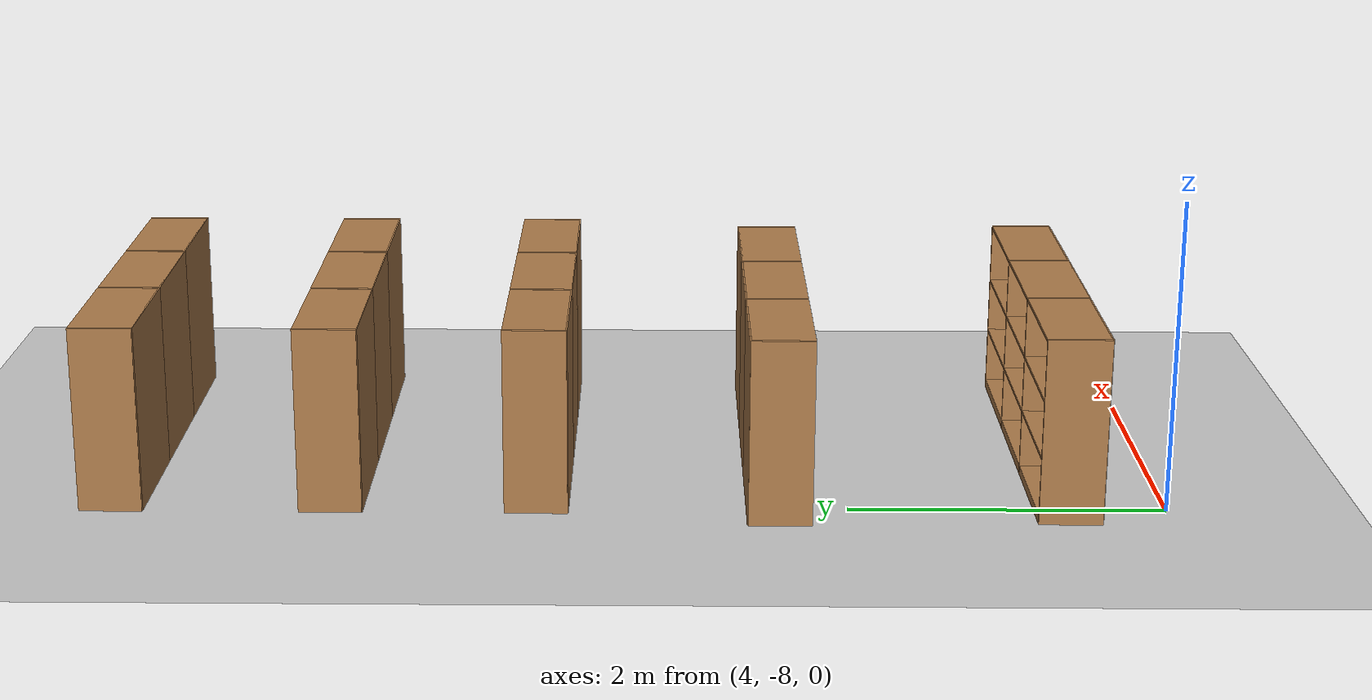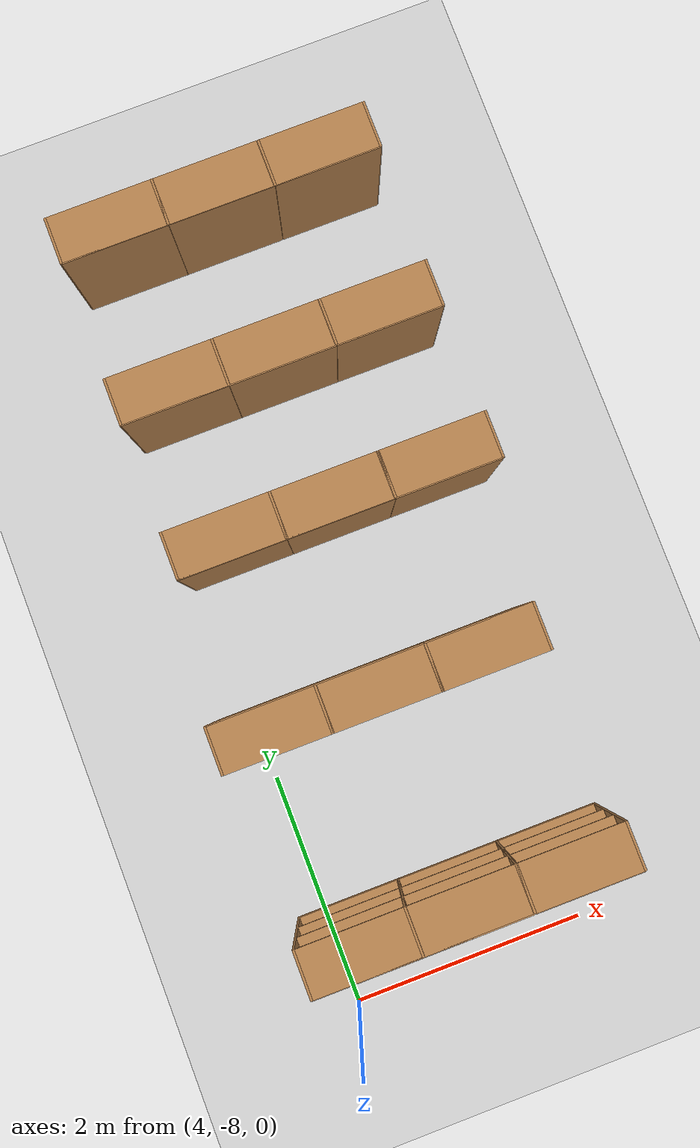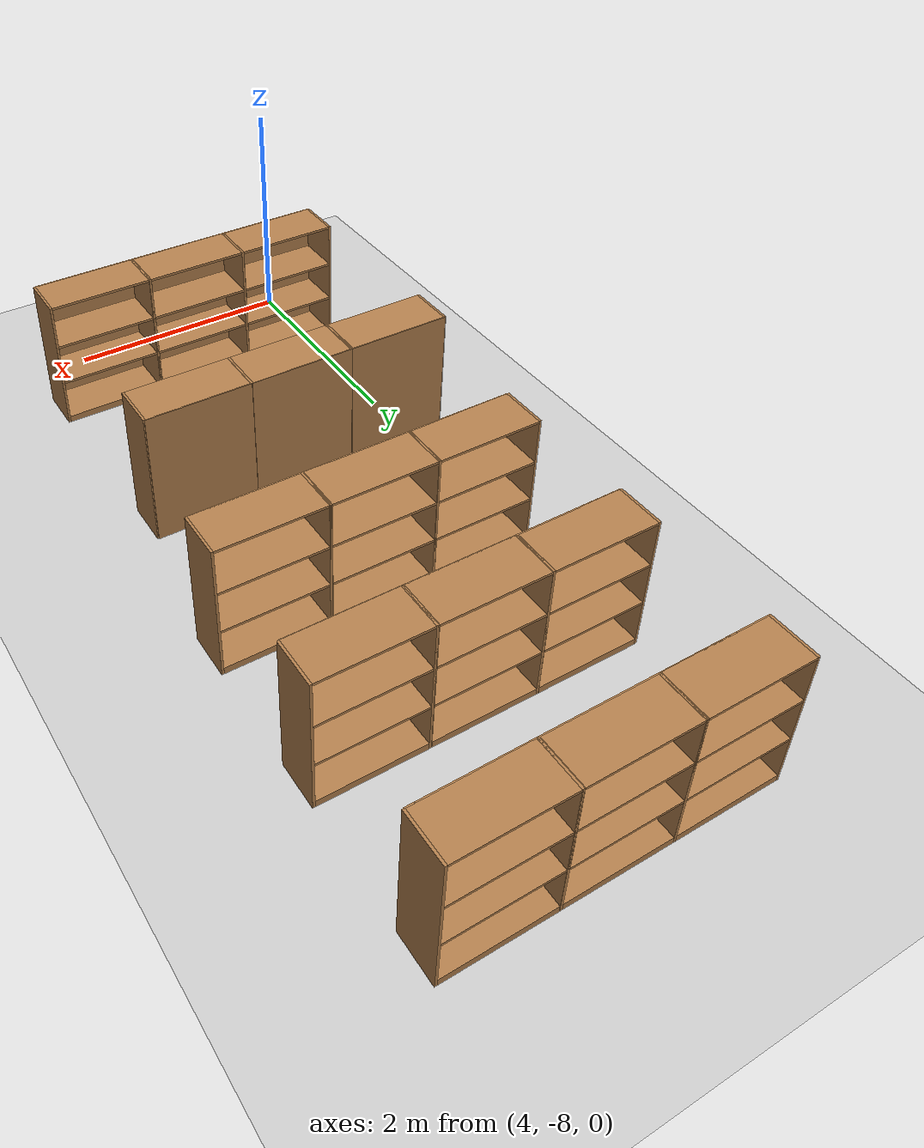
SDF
<sdf version="1.6">
 <world name="default">
  <model name="Bookself-3_0_clone_10">
   <model name="bookshelf_0">
    <static>1</static>
    <link name="link">
     <inertial><mass>1</mass></inertial>
     <collision name="back">
      <pose>0 0.005 0.6 0 -0 0</pose>
      <geometry><box><size>0.9 0.01 1.2</size></box></geometry>
     </collision>
     <visual name="visual1">
      <pose>0 0.005 0.6 0 -0 0</pose>
      <geometry><box><size>0.9 0.01 1.2</size></box></geometry>
      <material>
       <script><uri>file://media/materials/scripts/gazebo.material</uri><name>Gazebo/Wood</name></script>
      </material>
     </visual>
     <collision name="left_side">
      <pose>0.45 -0.195 0.6 0 -0 0</pose>
      <geometry><box><size>0.02 0.4 1.2</size></box></geometry>
     </collision>
     <visual name="visual2">
      <pose>0.45 -0.195 0.6 0 -0 0</pose>
      <geometry><box><size>0.02 0.4 1.2</size></box></geometry>
      <material>
       <script><uri>file://media/materials/scripts/gazebo.material</uri><name>Gazebo/Wood</name></script>
      </material>
     </visual>
     <collision name="right_side">
      <pose>-0.45 -0.195 0.6 0 -0 0</pose>
      <geometry><box><size>0.02 0.4 1.2</size></box></geometry>
     </collision>
     <visual name="visual3">
      <pose>-0.45 -0.195 0.6 0 -0 0</pose>
      <geometry><box><size>0.02 0.4 1.2</size></box></geometry>
      <material>
       <script><uri>file://media/materials/scripts/gazebo.material</uri><name>Gazebo/Wood</name></script>
      </material>
     </visual>
     <collision name="bottom">
      <pose>0 -0.195 0.03 0 -0 0</pose>
      <geometry><box><size>0.88 0.4 0.06</size></box></geometry>
     </collision>
     <visual name="visual4">
      <pose>0 -0.195 0.03 0 -0 0</pose>
      <geometry><box><size>0.88 0.4 0.06</size></box></geometry>
      <material>
       <script><uri>file://media/materials/scripts/gazebo.material</uri><name>Gazebo/Wood</name></script>
      </material>
     </visual>
     <collision name="top">
      <pose>0 -0.195 1.19 0 -0 0</pose>
      <geometry><box><size>0.88 0.4 0.02</size></box></geometry>
     </collision>
     <visual name="visual5">
      <pose>0 -0.195 1.19 0 -0 0</pose>
      <geometry><box><size>0.88 0.4 0.02</size></box></geometry>
      <material>
       <script><uri>file://media/materials/scripts/gazebo.material</uri><name>Gazebo/Wood</name></script>
      </material>
     </visual>
     <collision name="low_shelf">
      <pose>0 -0.195 0.43 0 -0 0</pose>
      <geometry><box><size>0.88 0.4 0.02</size></box></geometry>
     </collision>
     <visual name="visual6">
      <pose>0 -0.195 0.43 0 -0 0</pose>
      <geometry><box><size>0.88 0.4 0.02</size></box></geometry>
      <material>
       <script><uri>file://media/materials/scripts/gazebo.material</uri><name>Gazebo/Wood</name></script>
      </material>
     </visual>
     <collision name="high_shelf">
      <pose>0 -0.195 0.8 0 -0 0</pose>
      <geometry><box><size>0.88 0.4 0.02</size></box></geometry>
     </collision>
     <visual name="visual7">
      <pose>0 -0.195 0.8 0 -0 0</pose>
      <geometry><box><size>0.88 0.4 0.02</size></box></geometry>
      <material>
       <script><uri>file://media/materials/scripts/gazebo.material</uri><name>Gazebo/Wood</name></script>
      </material>
     </visual>
    </link>
    <pose>-0.903039 0 0 0 -0 0</pose>
   </model>
   <model name="bookshelf_1">
    <static>1</static>
    <link name="link">
     <inertial><mass>1</mass></inertial>
     <collision name="back">
      <pose>0 0.005 0.6 0 -0 0</pose>
      <geometry><box><size>0.9 0.01 1.2</size></box></geometry>
     </collision>
     <visual name="visual1">
      <pose>0 0.005 0.6 0 -0 0</pose>
      <geometry><box><size>0.9 0.01 1.2</size></box></geometry>
      <material>
       <script><uri>file://media/materials/scripts/gazebo.material</uri><name>Gazebo/Wood</name></script>
      </material>
     </visual>
     <collision name="left_side">
      <pose>0.45 -0.195 0.6 0 -0 0</pose>
      <geometry><box><size>0.02 0.4 1.2</size></box></geometry>
     </collision>
     <visual name="visual2">
      <pose>0.45 -0.195 0.6 0 -0 0</pose>
      <geometry><box><size>0.02 0.4 1.2</size></box></geometry>
      <material>
       <script><uri>file://media/materials/scripts/gazebo.material</uri><name>Gazebo/Wood</name></script>
      </material>
     </visual>
     <collision name="right_side">
      <pose>-0.45 -0.195 0.6 0 -0 0</pose>
      <geometry><box><size>0.02 0.4 1.2</size></box></geometry>
     </collision>
     <visual name="visual3">
      <pose>-0.45 -0.195 0.6 0 -0 0</pose>
      <geometry><box><size>0.02 0.4 1.2</size></box></geometry>
      <material>
       <script><uri>file://media/materials/scripts/gazebo.material</uri><name>Gazebo/Wood</name></script>
      </material>
     </visual>
     <collision name="bottom">
      <pose>0 -0.195 0.03 0 -0 0</pose>
      <geometry><box><size>0.88 0.4 0.06</size></box></geometry>
     </collision>
     <visual name="visual4">
      <pose>0 -0.195 0.03 0 -0 0</pose>
      <geometry><box><size>0.88 0.4 0.06</size></box></geometry>
      <material>
       <script><uri>file://media/materials/scripts/gazebo.material</uri><name>Gazebo/Wood</name></script>
      </material>
     </visual>
     <collision name="top">
      <pose>0 -0.195 1.19 0 -0 0</pose>
      <geometry><box><size>0.88 0.4 0.02</size></box></geometry>
     </collision>
     <visual name="visual5">
      <pose>0 -0.195 1.19 0 -0 0</pose>
      <geometry><box><size>0.88 0.4 0.02</size></box></geometry>
      <material>
       <script><uri>file://media/materials/scripts/gazebo.material</uri><name>Gazebo/Wood</name></script>
      </material>
     </visual>
     <collision name="low_shelf">
      <pose>0 -0.195 0.43 0 -0 0</pose>
      <geometry><box><size>0.88 0.4 0.02</size></box></geometry>
     </collision>
     <visual name="visual6">
      <pose>0 -0.195 0.43 0 -0 0</pose>
      <geometry><box><size>0.88 0.4 0.02</size></box></geometry>
      <material>
       <script><uri>file://media/materials/scripts/gazebo.material</uri><name>Gazebo/Wood</name></script>
      </material>
     </visual>
     <collision name="high_shelf">
      <pose>0 -0.195 0.8 0 -0 0</pose>
      <geometry><box><size>0.88 0.4 0.02</size></box></geometry>
     </collision>
     <visual name="visual7">
      <pose>0 -0.195 0.8 0 -0 0</pose>
      <geometry><box><size>0.88 0.4 0.02</size></box></geometry>
      <material>
       <script><uri>file://media/materials/scripts/gazebo.material</uri><name>Gazebo/Wood</name></script>
      </material>
     </visual>
    </link>
    <pose>0.000535 0 0 0 -0 0</pose>
   </model>
   <model name="bookshelf_1_clone">
    <static>1</static>
    <link name="link">
     <inertial><mass>1</mass></inertial>
     <collision name="back">
      <pose>0 0.005 0.6 0 -0 0</pose>
      <geometry><box><size>0.9 0.01 1.2</size></box></geometry>
     </collision>
     <visual name="visual1">
      <pose>0 0.005 0.6 0 -0 0</pose>
      <geometry><box><size>0.9 0.01 1.2</size></box></geometry>
      <material>
       <script><uri>file://media/materials/scripts/gazebo.material</uri><name>Gazebo/Wood</name></script>
      </material>
     </visual>
     <collision name="left_side">
      <pose>0.45 -0.195 0.6 0 -0 0</pose>
      <geometry><box><size>0.02 0.4 1.2</size></box></geometry>
     </collision>
     <visual name="visual2">
      <pose>0.45 -0.195 0.6 0 -0 0</pose>
      <geometry><box><size>0.02 0.4 1.2</size></box></geometry>
      <material>
       <script><uri>file://media/materials/scripts/gazebo.material</uri><name>Gazebo/Wood</name></script>
      </material>
     </visual>
     <collision name="right_side">
      <pose>-0.45 -0.195 0.6 0 -0 0</pose>
      <geometry><box><size>0.02 0.4 1.2</size></box></geometry>
     </collision>
     <visual name="visual3">
      <pose>-0.45 -0.195 0.6 0 -0 0</pose>
      <geometry><box><size>0.02 0.4 1.2</size></box></geometry>
      <material>
       <script><uri>file://media/materials/scripts/gazebo.material</uri><name>Gazebo/Wood</name></script>
      </material>
     </visual>
     <collision name="bottom">
      <pose>0 -0.195 0.03 0 -0 0</pose>
      <geometry><box><size>0.88 0.4 0.06</size></box></geometry>
     </collision>
     <visual name="visual4">
      <pose>0 -0.195 0.03 0 -0 0</pose>
      <geometry><box><size>0.88 0.4 0.06</size></box></geometry>
      <material>
       <script><uri>file://media/materials/scripts/gazebo.material</uri><name>Gazebo/Wood</name></script>
      </material>
     </visual>
     <collision name="top">
      <pose>0 -0.195 1.19 0 -0 0</pose>
      <geometry><box><size>0.88 0.4 0.02</size></box></geometry>
     </collision>
     <visual name="visual5">
      <pose>0 -0.195 1.19 0 -0 0</pose>
      <geometry><box><size>0.88 0.4 0.02</size></box></geometry>
      <material>
       <script><uri>file://media/materials/scripts/gazebo.material</uri><name>Gazebo/Wood</name></script>
      </material>
     </visual>
     <collision name="low_shelf">
      <pose>0 -0.195 0.43 0 -0 0</pose>
      <geometry><box><size>0.88 0.4 0.02</size></box></geometry>
     </collision>
     <visual name="visual6">
      <pose>0 -0.195 0.43 0 -0 0</pose>
      <geometry><box><size>0.88 0.4 0.02</size></box></geometry>
      <material>
       <script><uri>file://media/materials/scripts/gazebo.material</uri><name>Gazebo/Wood</name></script>
      </material>
     </visual>
     <collision name="high_shelf">
      <pose>0 -0.195 0.8 0 -0 0</pose>
      <geometry><box><size>0.88 0.4 0.02</size></box></geometry>
     </collision>
     <visual name="visual7">
      <pose>0 -0.195 0.8 0 -0 0</pose>
      <geometry><box><size>0.88 0.4 0.02</size></box></geometry>
      <material>
       <script><uri>file://media/materials/scripts/gazebo.material</uri><name>Gazebo/Wood</name></script>
      </material>
     </visual>
    </link>
    <pose>0.902502 0 0 0 -0 0</pose>
   </model>
   <static>1</static>
   <pose>5.26599 -1.55347 0 0 -0 3.14159</pose>
  </model>
  <model name="Bookself-3_0_clone_10_clone">
   <model name="bookshelf_0">
    <static>1</static>
    <link name="link">
     <inertial><mass>1</mass></inertial>
     <collision name="back">
      <pose>0 0.005 0.6 0 -0 0</pose>
      <geometry><box><size>0.9 0.01 1.2</size></box></geometry>
     </collision>
     <visual name="visual1">
      <pose>0 0.005 0.6 0 -0 0</pose>
      <geometry><box><size>0.9 0.01 1.2</size></box></geometry>
      <material>
       <script><uri>file://media/materials/scripts/gazebo.material</uri><name>Gazebo/Wood</name></script>
      </material>
     </visual>
     <collision name="left_side">
      <pose>0.45 -0.195 0.6 0 -0 0</pose>
      <geometry><box><size>0.02 0.4 1.2</size></box></geometry>
     </collision>
     <visual name="visual2">
      <pose>0.45 -0.195 0.6 0 -0 0</pose>
      <geometry><box><size>0.02 0.4 1.2</size></box></geometry>
      <material>
       <script><uri>file://media/materials/scripts/gazebo.material</uri><name>Gazebo/Wood</name></script>
      </material>
     </visual>
     <collision name="right_side">
      <pose>-0.45 -0.195 0.6 0 -0 0</pose>
      <geometry><box><size>0.02 0.4 1.2</size></box></geometry>
     </collision>
     <visual name="visual3">
      <pose>-0.45 -0.195 0.6 0 -0 0</pose>
      <geometry><box><size>0.02 0.4 1.2</size></box></geometry>
      <material>
       <script><uri>file://media/materials/scripts/gazebo.material</uri><name>Gazebo/Wood</name></script>
      </material>
     </visual>
     <collision name="bottom">
      <pose>0 -0.195 0.03 0 -0 0</pose>
      <geometry><box><size>0.88 0.4 0.06</size></box></geometry>
     </collision>
     <visual name="visual4">
      <pose>0 -0.195 0.03 0 -0 0</pose>
      <geometry><box><size>0.88 0.4 0.06</size></box></geometry>
      <material>
       <script><uri>file://media/materials/scripts/gazebo.material</uri><name>Gazebo/Wood</name></script>
      </material>
     </visual>
     <collision name="top">
      <pose>0 -0.195 1.19 0 -0 0</pose>
      <geometry><box><size>0.88 0.4 0.02</size></box></geometry>
     </collision>
     <visual name="visual5">
      <pose>0 -0.195 1.19 0 -0 0</pose>
      <geometry><box><size>0.88 0.4 0.02</size></box></geometry>
      <material>
       <script><uri>file://media/materials/scripts/gazebo.material</uri><name>Gazebo/Wood</name></script>
      </material>
     </visual>
     <collision name="low_shelf">
      <pose>0 -0.195 0.43 0 -0 0</pose>
      <geometry><box><size>0.88 0.4 0.02</size></box></geometry>
     </collision>
     <visual name="visual6">
      <pose>0 -0.195 0.43 0 -0 0</pose>
      <geometry><box><size>0.88 0.4 0.02</size></box></geometry>
      <material>
       <script><uri>file://media/materials/scripts/gazebo.material</uri><name>Gazebo/Wood</name></script>
      </material>
     </visual>
     <collision name="high_shelf">
      <pose>0 -0.195 0.8 0 -0 0</pose>
      <geometry><box><size>0.88 0.4 0.02</size></box></geometry>
     </collision>
     <visual name="visual7">
      <pose>0 -0.195 0.8 0 -0 0</pose>
      <geometry><box><size>0.88 0.4 0.02</size></box></geometry>
      <material>
       <script><uri>file://media/materials/scripts/gazebo.material</uri><name>Gazebo/Wood</name></script>
      </material>
     </visual>
    </link>
    <pose>-0.903039 0 0 0 -0 0</pose>
   </model>
   <model name="bookshelf_1">
    <static>1</static>
    <link name="link">
     <inertial><mass>1</mass></inertial>
     <collision name="back">
      <pose>0 0.005 0.6 0 -0 0</pose>
      <geometry><box><size>0.9 0.01 1.2</size></box></geometry>
     </collision>
     <visual name="visual1">
      <pose>0 0.005 0.6 0 -0 0</pose>
      <geometry><box><size>0.9 0.01 1.2</size></box></geometry>
      <material>
       <script><uri>file://media/materials/scripts/gazebo.material</uri><name>Gazebo/Wood</name></script>
      </material>
     </visual>
     <collision name="left_side">
      <pose>0.45 -0.195 0.6 0 -0 0</pose>
      <geometry><box><size>0.02 0.4 1.2</size></box></geometry>
     </collision>
     <visual name="visual2">
      <pose>0.45 -0.195 0.6 0 -0 0</pose>
      <geometry><box><size>0.02 0.4 1.2</size></box></geometry>
      <material>
       <script><uri>file://media/materials/scripts/gazebo.material</uri><name>Gazebo/Wood</name></script>
      </material>
     </visual>
     <collision name="right_side">
      <pose>-0.45 -0.195 0.6 0 -0 0</pose>
      <geometry><box><size>0.02 0.4 1.2</size></box></geometry>
     </collision>
     <visual name="visual3">
      <pose>-0.45 -0.195 0.6 0 -0 0</pose>
      <geometry><box><size>0.02 0.4 1.2</size></box></geometry>
      <material>
       <script><uri>file://media/materials/scripts/gazebo.material</uri><name>Gazebo/Wood</name></script>
      </material>
     </visual>
     <collision name="bottom">
      <pose>0 -0.195 0.03 0 -0 0</pose>
      <geometry><box><size>0.88 0.4 0.06</size></box></geometry>
     </collision>
     <visual name="visual4">
      <pose>0 -0.195 0.03 0 -0 0</pose>
      <geometry><box><size>0.88 0.4 0.06</size></box></geometry>
      <material>
       <script><uri>file://media/materials/scripts/gazebo.material</uri><name>Gazebo/Wood</name></script>
      </material>
     </visual>
     <collision name="top">
      <pose>0 -0.195 1.19 0 -0 0</pose>
      <geometry><box><size>0.88 0.4 0.02</size></box></geometry>
     </collision>
     <visual name="visual5">
      <pose>0 -0.195 1.19 0 -0 0</pose>
      <geometry><box><size>0.88 0.4 0.02</size></box></geometry>
      <material>
       <script><uri>file://media/materials/scripts/gazebo.material</uri><name>Gazebo/Wood</name></script>
      </material>
     </visual>
     <collision name="low_shelf">
      <pose>0 -0.195 0.43 0 -0 0</pose>
      <geometry><box><size>0.88 0.4 0.02</size></box></geometry>
     </collision>
     <visual name="visual6">
      <pose>0 -0.195 0.43 0 -0 0</pose>
      <geometry><box><size>0.88 0.4 0.02</size></box></geometry>
      <material>
       <script><uri>file://media/materials/scripts/gazebo.material</uri><name>Gazebo/Wood</name></script>
      </material>
     </visual>
     <collision name="high_shelf">
      <pose>0 -0.195 0.8 0 -0 0</pose>
      <geometry><box><size>0.88 0.4 0.02</size></box></geometry>
     </collision>
     <visual name="visual7">
      <pose>0 -0.195 0.8 0 -0 0</pose>
      <geometry><box><size>0.88 0.4 0.02</size></box></geometry>
      <material>
       <script><uri>file://media/materials/scripts/gazebo.material</uri><name>Gazebo/Wood</name></script>
      </material>
     </visual>
    </link>
    <pose>0.000535 0 0 0 -0 0</pose>
   </model>
   <model name="bookshelf_1_clone">
    <static>1</static>
    <link name="link">
     <inertial><mass>1</mass></inertial>
     <collision name="back">
      <pose>0 0.005 0.6 0 -0 0</pose>
      <geometry><box><size>0.9 0.01 1.2</size></box></geometry>
     </collision>
     <visual name="visual1">
      <pose>0 0.005 0.6 0 -0 0</pose>
      <geometry><box><size>0.9 0.01 1.2</size></box></geometry>
      <material>
       <script><uri>file://media/materials/scripts/gazebo.material</uri><name>Gazebo/Wood</name></script>
      </material>
     </visual>
     <collision name="left_side">
      <pose>0.45 -0.195 0.6 0 -0 0</pose>
      <geometry><box><size>0.02 0.4 1.2</size></box></geometry>
     </collision>
     <visual name="visual2">
      <pose>0.45 -0.195 0.6 0 -0 0</pose>
      <geometry><box><size>0.02 0.4 1.2</size></box></geometry>
      <material>
       <script><uri>file://media/materials/scripts/gazebo.material</uri><name>Gazebo/Wood</name></script>
      </material>
     </visual>
     <collision name="right_side">
      <pose>-0.45 -0.195 0.6 0 -0 0</pose>
      <geometry><box><size>0.02 0.4 1.2</size></box></geometry>
     </collision>
     <visual name="visual3">
      <pose>-0.45 -0.195 0.6 0 -0 0</pose>
      <geometry><box><size>0.02 0.4 1.2</size></box></geometry>
      <material>
       <script><uri>file://media/materials/scripts/gazebo.material</uri><name>Gazebo/Wood</name></script>
      </material>
     </visual>
     <collision name="bottom">
      <pose>0 -0.195 0.03 0 -0 0</pose>
      <geometry><box><size>0.88 0.4 0.06</size></box></geometry>
     </collision>
     <visual name="visual4">
      <pose>0 -0.195 0.03 0 -0 0</pose>
      <geometry><box><size>0.88 0.4 0.06</size></box></geometry>
      <material>
       <script><uri>file://media/materials/scripts/gazebo.material</uri><name>Gazebo/Wood</name></script>
      </material>
     </visual>
     <collision name="top">
      <pose>0 -0.195 1.19 0 -0 0</pose>
      <geometry><box><size>0.88 0.4 0.02</size></box></geometry>
     </collision>
     <visual name="visual5">
      <pose>0 -0.195 1.19 0 -0 0</pose>
      <geometry><box><size>0.88 0.4 0.02</size></box></geometry>
      <material>
       <script><uri>file://media/materials/scripts/gazebo.material</uri><name>Gazebo/Wood</name></script>
      </material>
     </visual>
     <collision name="low_shelf">
      <pose>0 -0.195 0.43 0 -0 0</pose>
      <geometry><box><size>0.88 0.4 0.02</size></box></geometry>
     </collision>
     <visual name="visual6">
      <pose>0 -0.195 0.43 0 -0 0</pose>
      <geometry><box><size>0.88 0.4 0.02</size></box></geometry>
      <material>
       <script><uri>file://media/materials/scripts/gazebo.material</uri><name>Gazebo/Wood</name></script>
      </material>
     </visual>
     <collision name="high_shelf">
      <pose>0 -0.195 0.8 0 -0 0</pose>
      <geometry><box><size>0.88 0.4 0.02</size></box></geometry>
     </collision>
     <visual name="visual7">
      <pose>0 -0.195 0.8 0 -0 0</pose>
      <geometry><box><size>0.88 0.4 0.02</size></box></geometry>
      <material>
       <script><uri>file://media/materials/scripts/gazebo.material</uri><name>Gazebo/Wood</name></script>
      </material>
     </visual>
    </link>
    <pose>0.902502 0 0 0 -0 0</pose>
   </model>
   <static>1</static>
   <pose>5.26599 -4.23241 0 0 -0 3.14159</pose>
  </model>
  <model name="Bookself-3_0_clone_10_clone_0">
   <model name="bookshelf_0">
    <static>1</static>
    <link name="link">
     <inertial><mass>1</mass></inertial>
     <collision name="back">
      <pose>0 0.005 0.6 0 -0 0</pose>
      <geometry><box><size>0.9 0.01 1.2</size></box></geometry>
     </collision>
     <visual name="visual1">
      <pose>0 0.005 0.6 0 -0 0</pose>
      <geometry><box><size>0.9 0.01 1.2</size></box></geometry>
      <material>
       <script><uri>file://media/materials/scripts/gazebo.material</uri><name>Gazebo/Wood</name></script>
      </material>
     </visual>
     <collision name="left_side">
      <pose>0.45 -0.195 0.6 0 -0 0</pose>
      <geometry><box><size>0.02 0.4 1.2</size></box></geometry>
     </collision>
     <visual name="visual2">
      <pose>0.45 -0.195 0.6 0 -0 0</pose>
      <geometry><box><size>0.02 0.4 1.2</size></box></geometry>
      <material>
       <script><uri>file://media/materials/scripts/gazebo.material</uri><name>Gazebo/Wood</name></script>
      </material>
     </visual>
     <collision name="right_side">
      <pose>-0.45 -0.195 0.6 0 -0 0</pose>
      <geometry><box><size>0.02 0.4 1.2</size></box></geometry>
     </collision>
     <visual name="visual3">
      <pose>-0.45 -0.195 0.6 0 -0 0</pose>
      <geometry><box><size>0.02 0.4 1.2</size></box></geometry>
      <material>
       <script><uri>file://media/materials/scripts/gazebo.material</uri><name>Gazebo/Wood</name></script>
      </material>
     </visual>
     <collision name="bottom">
      <pose>0 -0.195 0.03 0 -0 0</pose>
      <geometry><box><size>0.88 0.4 0.06</size></box></geometry>
     </collision>
     <visual name="visual4">
      <pose>0 -0.195 0.03 0 -0 0</pose>
      <geometry><box><size>0.88 0.4 0.06</size></box></geometry>
      <material>
       <script><uri>file://media/materials/scripts/gazebo.material</uri><name>Gazebo/Wood</name></script>
      </material>
     </visual>
     <collision name="top">
      <pose>0 -0.195 1.19 0 -0 0</pose>
      <geometry><box><size>0.88 0.4 0.02</size></box></geometry>
     </collision>
     <visual name="visual5">
      <pose>0 -0.195 1.19 0 -0 0</pose>
      <geometry><box><size>0.88 0.4 0.02</size></box></geometry>
      <material>
       <script><uri>file://media/materials/scripts/gazebo.material</uri><name>Gazebo/Wood</name></script>
      </material>
     </visual>
     <collision name="low_shelf">
      <pose>0 -0.195 0.43 0 -0 0</pose>
      <geometry><box><size>0.88 0.4 0.02</size></box></geometry>
     </collision>
     <visual name="visual6">
      <pose>0 -0.195 0.43 0 -0 0</pose>
      <geometry><box><size>0.88 0.4 0.02</size></box></geometry>
      <material>
       <script><uri>file://media/materials/scripts/gazebo.material</uri><name>Gazebo/Wood</name></script>
      </material>
     </visual>
     <collision name="high_shelf">
      <pose>0 -0.195 0.8 0 -0 0</pose>
      <geometry><box><size>0.88 0.4 0.02</size></box></geometry>
     </collision>
     <visual name="visual7">
      <pose>0 -0.195 0.8 0 -0 0</pose>
      <geometry><box><size>0.88 0.4 0.02</size></box></geometry>
      <material>
       <script><uri>file://media/materials/scripts/gazebo.material</uri><name>Gazebo/Wood</name></script>
      </material>
     </visual>
    </link>
    <pose>-0.903039 0 0 0 -0 0</pose>
   </model>
   <model name="bookshelf_1">
    <static>1</static>
    <link name="link">
     <inertial><mass>1</mass></inertial>
     <collision name="back">
      <pose>0 0.005 0.6 0 -0 0</pose>
      <geometry><box><size>0.9 0.01 1.2</size></box></geometry>
     </collision>
     <visual name="visual1">
      <pose>0 0.005 0.6 0 -0 0</pose>
      <geometry><box><size>0.9 0.01 1.2</size></box></geometry>
      <material>
       <script><uri>file://media/materials/scripts/gazebo.material</uri><name>Gazebo/Wood</name></script>
      </material>
     </visual>
     <collision name="left_side">
      <pose>0.45 -0.195 0.6 0 -0 0</pose>
      <geometry><box><size>0.02 0.4 1.2</size></box></geometry>
     </collision>
     <visual name="visual2">
      <pose>0.45 -0.195 0.6 0 -0 0</pose>
      <geometry><box><size>0.02 0.4 1.2</size></box></geometry>
      <material>
       <script><uri>file://media/materials/scripts/gazebo.material</uri><name>Gazebo/Wood</name></script>
      </material>
     </visual>
     <collision name="right_side">
      <pose>-0.45 -0.195 0.6 0 -0 0</pose>
      <geometry><box><size>0.02 0.4 1.2</size></box></geometry>
     </collision>
     <visual name="visual3">
      <pose>-0.45 -0.195 0.6 0 -0 0</pose>
      <geometry><box><size>0.02 0.4 1.2</size></box></geometry>
      <material>
       <script><uri>file://media/materials/scripts/gazebo.material</uri><name>Gazebo/Wood</name></script>
      </material>
     </visual>
     <collision name="bottom">
      <pose>0 -0.195 0.03 0 -0 0</pose>
      <geometry><box><size>0.88 0.4 0.06</size></box></geometry>
     </collision>
     <visual name="visual4">
      <pose>0 -0.195 0.03 0 -0 0</pose>
      <geometry><box><size>0.88 0.4 0.06</size></box></geometry>
      <material>
       <script><uri>file://media/materials/scripts/gazebo.material</uri><name>Gazebo/Wood</name></script>
      </material>
     </visual>
     <collision name="top">
      <pose>0 -0.195 1.19 0 -0 0</pose>
      <geometry><box><size>0.88 0.4 0.02</size></box></geometry>
     </collision>
     <visual name="visual5">
      <pose>0 -0.195 1.19 0 -0 0</pose>
      <geometry><box><size>0.88 0.4 0.02</size></box></geometry>
      <material>
       <script><uri>file://media/materials/scripts/gazebo.material</uri><name>Gazebo/Wood</name></script>
      </material>
     </visual>
     <collision name="low_shelf">
      <pose>0 -0.195 0.43 0 -0 0</pose>
      <geometry><box><size>0.88 0.4 0.02</size></box></geometry>
     </collision>
     <visual name="visual6">
      <pose>0 -0.195 0.43 0 -0 0</pose>
      <geometry><box><size>0.88 0.4 0.02</size></box></geometry>
      <material>
       <script><uri>file://media/materials/scripts/gazebo.material</uri><name>Gazebo/Wood</name></script>
      </material>
     </visual>
     <collision name="high_shelf">
      <pose>0 -0.195 0.8 0 -0 0</pose>
      <geometry><box><size>0.88 0.4 0.02</size></box></geometry>
     </collision>
     <visual name="visual7">
      <pose>0 -0.195 0.8 0 -0 0</pose>
      <geometry><box><size>0.88 0.4 0.02</size></box></geometry>
      <material>
       <script><uri>file://media/materials/scripts/gazebo.material</uri><name>Gazebo/Wood</name></script>
      </material>
     </visual>
    </link>
    <pose>0.000535 0 0 0 -0 0</pose>
   </model>
   <model name="bookshelf_1_clone">
    <static>1</static>
    <link name="link">
     <inertial><mass>1</mass></inertial>
     <collision name="back">
      <pose>0 0.005 0.6 0 -0 0</pose>
      <geometry><box><size>0.9 0.01 1.2</size></box></geometry>
     </collision>
     <visual name="visual1">
      <pose>0 0.005 0.6 0 -0 0</pose>
      <geometry><box><size>0.9 0.01 1.2</size></box></geometry>
      <material>
       <script><uri>file://media/materials/scripts/gazebo.material</uri><name>Gazebo/Wood</name></script>
      </material>
     </visual>
     <collision name="left_side">
      <pose>0.45 -0.195 0.6 0 -0 0</pose>
      <geometry><box><size>0.02 0.4 1.2</size></box></geometry>
     </collision>
     <visual name="visual2">
      <pose>0.45 -0.195 0.6 0 -0 0</pose>
      <geometry><box><size>0.02 0.4 1.2</size></box></geometry>
      <material>
       <script><uri>file://media/materials/scripts/gazebo.material</uri><name>Gazebo/Wood</name></script>
      </material>
     </visual>
     <collision name="right_side">
      <pose>-0.45 -0.195 0.6 0 -0 0</pose>
      <geometry><box><size>0.02 0.4 1.2</size></box></geometry>
     </collision>
     <visual name="visual3">
      <pose>-0.45 -0.195 0.6 0 -0 0</pose>
      <geometry><box><size>0.02 0.4 1.2</size></box></geometry>
      <material>
       <script><uri>file://media/materials/scripts/gazebo.material</uri><name>Gazebo/Wood</name></script>
      </material>
     </visual>
     <collision name="bottom">
      <pose>0 -0.195 0.03 0 -0 0</pose>
      <geometry><box><size>0.88 0.4 0.06</size></box></geometry>
     </collision>
     <visual name="visual4">
      <pose>0 -0.195 0.03 0 -0 0</pose>
      <geometry><box><size>0.88 0.4 0.06</size></box></geometry>
      <material>
       <script><uri>file://media/materials/scripts/gazebo.material</uri><name>Gazebo/Wood</name></script>
      </material>
     </visual>
     <collision name="top">
      <pose>0 -0.195 1.19 0 -0 0</pose>
      <geometry><box><size>0.88 0.4 0.02</size></box></geometry>
     </collision>
     <visual name="visual5">
      <pose>0 -0.195 1.19 0 -0 0</pose>
      <geometry><box><size>0.88 0.4 0.02</size></box></geometry>
      <material>
       <script><uri>file://media/materials/scripts/gazebo.material</uri><name>Gazebo/Wood</name></script>
      </material>
     </visual>
     <collision name="low_shelf">
      <pose>0 -0.195 0.43 0 -0 0</pose>
      <geometry><box><size>0.88 0.4 0.02</size></box></geometry>
     </collision>
     <visual name="visual6">
      <pose>0 -0.195 0.43 0 -0 0</pose>
      <geometry><box><size>0.88 0.4 0.02</size></box></geometry>
      <material>
       <script><uri>file://media/materials/scripts/gazebo.material</uri><name>Gazebo/Wood</name></script>
      </material>
     </visual>
     <collision name="high_shelf">
      <pose>0 -0.195 0.8 0 -0 0</pose>
      <geometry><box><size>0.88 0.4 0.02</size></box></geometry>
     </collision>
     <visual name="visual7">
      <pose>0 -0.195 0.8 0 -0 0</pose>
      <geometry><box><size>0.88 0.4 0.02</size></box></geometry>
      <material>
       <script><uri>file://media/materials/scripts/gazebo.material</uri><name>Gazebo/Wood</name></script>
      </material>
     </visual>
    </link>
    <pose>0.902502 0 0 0 -0 0</pose>
   </model>
   <static>1</static>
   <pose>5.26599 -2.93796 0 0 -0 3.14159</pose>
  </model>
  <model name="Bookself-3_0_clone_10_clone_7">
   <model name="bookshelf_0">
    <static>1</static>
    <link name="link">
     <inertial><mass>1</mass></inertial>
     <collision name="back">
      <pose>0 0.005 0.6 0 -0 0</pose>
      <geometry><box><size>0.9 0.01 1.2</size></box></geometry>
     </collision>
     <visual name="visual1">
      <pose>0 0.005 0.6 0 -0 0</pose>
      <geometry><box><size>0.9 0.01 1.2</size></box></geometry>
      <material>
       <script><uri>file://media/materials/scripts/gazebo.material</uri><name>Gazebo/Wood</name></script>
      </material>
     </visual>
     <collision name="left_side">
      <pose>0.45 -0.195 0.6 0 -0 0</pose>
      <geometry><box><size>0.02 0.4 1.2</size></box></geometry>
     </collision>
     <visual name="visual2">
      <pose>0.45 -0.195 0.6 0 -0 0</pose>
      <geometry><box><size>0.02 0.4 1.2</size></box></geometry>
      <material>
       <script><uri>file://media/materials/scripts/gazebo.material</uri><name>Gazebo/Wood</name></script>
      </material>
     </visual>
     <collision name="right_side">
      <pose>-0.45 -0.195 0.6 0 -0 0</pose>
      <geometry><box><size>0.02 0.4 1.2</size></box></geometry>
     </collision>
     <visual name="visual3">
      <pose>-0.45 -0.195 0.6 0 -0 0</pose>
      <geometry><box><size>0.02 0.4 1.2</size></box></geometry>
      <material>
       <script><uri>file://media/materials/scripts/gazebo.material</uri><name>Gazebo/Wood</name></script>
      </material>
     </visual>
     <collision name="bottom">
      <pose>0 -0.195 0.03 0 -0 0</pose>
      <geometry><box><size>0.88 0.4 0.06</size></box></geometry>
     </collision>
     <visual name="visual4">
      <pose>0 -0.195 0.03 0 -0 0</pose>
      <geometry><box><size>0.88 0.4 0.06</size></box></geometry>
      <material>
       <script><uri>file://media/materials/scripts/gazebo.material</uri><name>Gazebo/Wood</name></script>
      </material>
     </visual>
     <collision name="top">
      <pose>0 -0.195 1.19 0 -0 0</pose>
      <geometry><box><size>0.88 0.4 0.02</size></box></geometry>
     </collision>
     <visual name="visual5">
      <pose>0 -0.195 1.19 0 -0 0</pose>
      <geometry><box><size>0.88 0.4 0.02</size></box></geometry>
      <material>
       <script><uri>file://media/materials/scripts/gazebo.material</uri><name>Gazebo/Wood</name></script>
      </material>
     </visual>
     <collision name="low_shelf">
      <pose>0 -0.195 0.43 0 -0 0</pose>
      <geometry><box><size>0.88 0.4 0.02</size></box></geometry>
     </collision>
     <visual name="visual6">
      <pose>0 -0.195 0.43 0 -0 0</pose>
      <geometry><box><size>0.88 0.4 0.02</size></box></geometry>
      <material>
       <script><uri>file://media/materials/scripts/gazebo.material</uri><name>Gazebo/Wood</name></script>
      </material>
     </visual>
     <collision name="high_shelf">
      <pose>0 -0.195 0.8 0 -0 0</pose>
      <geometry><box><size>0.88 0.4 0.02</size></box></geometry>
     </collision>
     <visual name="visual7">
      <pose>0 -0.195 0.8 0 -0 0</pose>
      <geometry><box><size>0.88 0.4 0.02</size></box></geometry>
      <material>
       <script><uri>file://media/materials/scripts/gazebo.material</uri><name>Gazebo/Wood</name></script>
      </material>
     </visual>
    </link>
    <pose>-0.903039 0 0 0 -0 0</pose>
   </model>
   <model name="bookshelf_1">
    <static>1</static>
    <link name="link">
     <inertial><mass>1</mass></inertial>
     <collision name="back">
      <pose>0 0.005 0.6 0 -0 0</pose>
      <geometry><box><size>0.9 0.01 1.2</size></box></geometry>
     </collision>
     <visual name="visual1">
      <pose>0 0.005 0.6 0 -0 0</pose>
      <geometry><box><size>0.9 0.01 1.2</size></box></geometry>
      <material>
       <script><uri>file://media/materials/scripts/gazebo.material</uri><name>Gazebo/Wood</name></script>
      </material>
     </visual>
     <collision name="left_side">
      <pose>0.45 -0.195 0.6 0 -0 0</pose>
      <geometry><box><size>0.02 0.4 1.2</size></box></geometry>
     </collision>
     <visual name="visual2">
      <pose>0.45 -0.195 0.6 0 -0 0</pose>
      <geometry><box><size>0.02 0.4 1.2</size></box></geometry>
      <material>
       <script><uri>file://media/materials/scripts/gazebo.material</uri><name>Gazebo/Wood</name></script>
      </material>
     </visual>
     <collision name="right_side">
      <pose>-0.45 -0.195 0.6 0 -0 0</pose>
      <geometry><box><size>0.02 0.4 1.2</size></box></geometry>
     </collision>
     <visual name="visual3">
      <pose>-0.45 -0.195 0.6 0 -0 0</pose>
      <geometry><box><size>0.02 0.4 1.2</size></box></geometry>
      <material>
       <script><uri>file://media/materials/scripts/gazebo.material</uri><name>Gazebo/Wood</name></script>
      </material>
     </visual>
     <collision name="bottom">
      <pose>0 -0.195 0.03 0 -0 0</pose>
      <geometry><box><size>0.88 0.4 0.06</size></box></geometry>
     </collision>
     <visual name="visual4">
      <pose>0 -0.195 0.03 0 -0 0</pose>
      <geometry><box><size>0.88 0.4 0.06</size></box></geometry>
      <material>
       <script><uri>file://media/materials/scripts/gazebo.material</uri><name>Gazebo/Wood</name></script>
      </material>
     </visual>
     <collision name="top">
      <pose>0 -0.195 1.19 0 -0 0</pose>
      <geometry><box><size>0.88 0.4 0.02</size></box></geometry>
     </collision>
     <visual name="visual5">
      <pose>0 -0.195 1.19 0 -0 0</pose>
      <geometry><box><size>0.88 0.4 0.02</size></box></geometry>
      <material>
       <script><uri>file://media/materials/scripts/gazebo.material</uri><name>Gazebo/Wood</name></script>
      </material>
     </visual>
     <collision name="low_shelf">
      <pose>0 -0.195 0.43 0 -0 0</pose>
      <geometry><box><size>0.88 0.4 0.02</size></box></geometry>
     </collision>
     <visual name="visual6">
      <pose>0 -0.195 0.43 0 -0 0</pose>
      <geometry><box><size>0.88 0.4 0.02</size></box></geometry>
      <material>
       <script><uri>file://media/materials/scripts/gazebo.material</uri><name>Gazebo/Wood</name></script>
      </material>
     </visual>
     <collision name="high_shelf">
      <pose>0 -0.195 0.8 0 -0 0</pose>
      <geometry><box><size>0.88 0.4 0.02</size></box></geometry>
     </collision>
     <visual name="visual7">
      <pose>0 -0.195 0.8 0 -0 0</pose>
      <geometry><box><size>0.88 0.4 0.02</size></box></geometry>
      <material>
       <script><uri>file://media/materials/scripts/gazebo.material</uri><name>Gazebo/Wood</name></script>
      </material>
     </visual>
    </link>
    <pose>0.000535 0 0 0 -0 0</pose>
   </model>
   <model name="bookshelf_1_clone">
    <static>1</static>
    <link name="link">
     <inertial><mass>1</mass></inertial>
     <collision name="back">
      <pose>0 0.005 0.6 0 -0 0</pose>
      <geometry><box><size>0.9 0.01 1.2</size></box></geometry>
     </collision>
     <visual name="visual1">
      <pose>0 0.005 0.6 0 -0 0</pose>
      <geometry><box><size>0.9 0.01 1.2</size></box></geometry>
      <material>
       <script><uri>file://media/materials/scripts/gazebo.material</uri><name>Gazebo/Wood</name></script>
      </material>
     </visual>
     <collision name="left_side">
      <pose>0.45 -0.195 0.6 0 -0 0</pose>
      <geometry><box><size>0.02 0.4 1.2</size></box></geometry>
     </collision>
     <visual name="visual2">
      <pose>0.45 -0.195 0.6 0 -0 0</pose>
      <geometry><box><size>0.02 0.4 1.2</size></box></geometry>
      <material>
       <script><uri>file://media/materials/scripts/gazebo.material</uri><name>Gazebo/Wood</name></script>
      </material>
     </visual>
     <collision name="right_side">
      <pose>-0.45 -0.195 0.6 0 -0 0</pose>
      <geometry><box><size>0.02 0.4 1.2</size></box></geometry>
     </collision>
     <visual name="visual3">
      <pose>-0.45 -0.195 0.6 0 -0 0</pose>
      <geometry><box><size>0.02 0.4 1.2</size></box></geometry>
      <material>
       <script><uri>file://media/materials/scripts/gazebo.material</uri><name>Gazebo/Wood</name></script>
      </material>
     </visual>
     <collision name="bottom">
      <pose>0 -0.195 0.03 0 -0 0</pose>
      <geometry><box><size>0.88 0.4 0.06</size></box></geometry>
     </collision>
     <visual name="visual4">
      <pose>0 -0.195 0.03 0 -0 0</pose>
      <geometry><box><size>0.88 0.4 0.06</size></box></geometry>
      <material>
       <script><uri>file://media/materials/scripts/gazebo.material</uri><name>Gazebo/Wood</name></script>
      </material>
     </visual>
     <collision name="top">
      <pose>0 -0.195 1.19 0 -0 0</pose>
      <geometry><box><size>0.88 0.4 0.02</size></box></geometry>
     </collision>
     <visual name="visual5">
      <pose>0 -0.195 1.19 0 -0 0</pose>
      <geometry><box><size>0.88 0.4 0.02</size></box></geometry>
      <material>
       <script><uri>file://media/materials/scripts/gazebo.material</uri><name>Gazebo/Wood</name></script>
      </material>
     </visual>
     <collision name="low_shelf">
      <pose>0 -0.195 0.43 0 -0 0</pose>
      <geometry><box><size>0.88 0.4 0.02</size></box></geometry>
     </collision>
     <visual name="visual6">
      <pose>0 -0.195 0.43 0 -0 0</pose>
      <geometry><box><size>0.88 0.4 0.02</size></box></geometry>
      <material>
       <script><uri>file://media/materials/scripts/gazebo.material</uri><name>Gazebo/Wood</name></script>
      </material>
     </visual>
     <collision name="high_shelf">
      <pose>0 -0.195 0.8 0 -0 0</pose>
      <geometry><box><size>0.88 0.4 0.02</size></box></geometry>
     </collision>
     <visual name="visual7">
      <pose>0 -0.195 0.8 0 -0 0</pose>
      <geometry><box><size>0.88 0.4 0.02</size></box></geometry>
      <material>
       <script><uri>file://media/materials/scripts/gazebo.material</uri><name>Gazebo/Wood</name></script>
      </material>
     </visual>
    </link>
    <pose>0.902502 0 0 0 -0 0</pose>
   </model>
   <static>1</static>
   <pose>5.11827 -7.55974 0 0 -0 3.14159</pose>
  </model>
  <model name="Bookself-3_0_clone_5_clone">
   <model name="bookshelf_0">
    <static>1</static>
    <link name="link">
     <inertial><mass>1</mass></inertial>
     <collision name="back">
      <pose>0 0.005 0.6 0 -0 0</pose>
      <geometry><box><size>0.9 0.01 1.2</size></box></geometry>
     </collision>
     <visual name="visual1">
      <pose>0 0.005 0.6 0 -0 0</pose>
      <geometry><box><size>0.9 0.01 1.2</size></box></geometry>
      <material>
       <script><uri>file://media/materials/scripts/gazebo.material</uri><name>Gazebo/Wood</name></script>
      </material>
     </visual>
     <collision name="left_side">
      <pose>0.45 -0.195 0.6 0 -0 0</pose>
      <geometry><box><size>0.02 0.4 1.2</size></box></geometry>
     </collision>
     <visual name="visual2">
      <pose>0.45 -0.195 0.6 0 -0 0</pose>
      <geometry><box><size>0.02 0.4 1.2</size></box></geometry>
      <material>
       <script><uri>file://media/materials/scripts/gazebo.material</uri><name>Gazebo/Wood</name></script>
      </material>
     </visual>
     <collision name="right_side">
      <pose>-0.45 -0.195 0.6 0 -0 0</pose>
      <geometry><box><size>0.02 0.4 1.2</size></box></geometry>
     </collision>
     <visual name="visual3">
      <pose>-0.45 -0.195 0.6 0 -0 0</pose>
      <geometry><box><size>0.02 0.4 1.2</size></box></geometry>
      <material>
       <script><uri>file://media/materials/scripts/gazebo.material</uri><name>Gazebo/Wood</name></script>
      </material>
     </visual>
     <collision name="bottom">
      <pose>0 -0.195 0.03 0 -0 0</pose>
      <geometry><box><size>0.88 0.4 0.06</size></box></geometry>
     </collision>
     <visual name="visual4">
      <pose>0 -0.195 0.03 0 -0 0</pose>
      <geometry><box><size>0.88 0.4 0.06</size></box></geometry>
      <material>
       <script><uri>file://media/materials/scripts/gazebo.material</uri><name>Gazebo/Wood</name></script>
      </material>
     </visual>
     <collision name="top">
      <pose>0 -0.195 1.19 0 -0 0</pose>
      <geometry><box><size>0.88 0.4 0.02</size></box></geometry>
     </collision>
     <visual name="visual5">
      <pose>0 -0.195 1.19 0 -0 0</pose>
      <geometry><box><size>0.88 0.4 0.02</size></box></geometry>
      <material>
       <script><uri>file://media/materials/scripts/gazebo.material</uri><name>Gazebo/Wood</name></script>
      </material>
     </visual>
     <collision name="low_shelf">
      <pose>0 -0.195 0.43 0 -0 0</pose>
      <geometry><box><size>0.88 0.4 0.02</size></box></geometry>
     </collision>
     <visual name="visual6">
      <pose>0 -0.195 0.43 0 -0 0</pose>
      <geometry><box><size>0.88 0.4 0.02</size></box></geometry>
      <material>
       <script><uri>file://media/materials/scripts/gazebo.material</uri><name>Gazebo/Wood</name></script>
      </material>
     </visual>
     <collision name="high_shelf">
      <pose>0 -0.195 0.8 0 -0 0</pose>
      <geometry><box><size>0.88 0.4 0.02</size></box></geometry>
     </collision>
     <visual name="visual7">
      <pose>0 -0.195 0.8 0 -0 0</pose>
      <geometry><box><size>0.88 0.4 0.02</size></box></geometry>
      <material>
       <script><uri>file://media/materials/scripts/gazebo.material</uri><name>Gazebo/Wood</name></script>
      </material>
     </visual>
    </link>
    <pose>-0.903039 0 0 0 -0 0</pose>
   </model>
   <model name="bookshelf_1">
    <static>1</static>
    <link name="link">
     <inertial><mass>1</mass></inertial>
     <collision name="back">
      <pose>0 0.005 0.6 0 -0 0</pose>
      <geometry><box><size>0.9 0.01 1.2</size></box></geometry>
     </collision>
     <visual name="visual1">
      <pose>0 0.005 0.6 0 -0 0</pose>
      <geometry><box><size>0.9 0.01 1.2</size></box></geometry>
      <material>
       <script><uri>file://media/materials/scripts/gazebo.material</uri><name>Gazebo/Wood</name></script>
      </material>
     </visual>
     <collision name="left_side">
      <pose>0.45 -0.195 0.6 0 -0 0</pose>
      <geometry><box><size>0.02 0.4 1.2</size></box></geometry>
     </collision>
     <visual name="visual2">
      <pose>0.45 -0.195 0.6 0 -0 0</pose>
      <geometry><box><size>0.02 0.4 1.2</size></box></geometry>
      <material>
       <script><uri>file://media/materials/scripts/gazebo.material</uri><name>Gazebo/Wood</name></script>
      </material>
     </visual>
     <collision name="right_side">
      <pose>-0.45 -0.195 0.6 0 -0 0</pose>
      <geometry><box><size>0.02 0.4 1.2</size></box></geometry>
     </collision>
     <visual name="visual3">
      <pose>-0.45 -0.195 0.6 0 -0 0</pose>
      <geometry><box><size>0.02 0.4 1.2</size></box></geometry>
      <material>
       <script><uri>file://media/materials/scripts/gazebo.material</uri><name>Gazebo/Wood</name></script>
      </material>
     </visual>
     <collision name="bottom">
      <pose>0 -0.195 0.03 0 -0 0</pose>
      <geometry><box><size>0.88 0.4 0.06</size></box></geometry>
     </collision>
     <visual name="visual4">
      <pose>0 -0.195 0.03 0 -0 0</pose>
      <geometry><box><size>0.88 0.4 0.06</size></box></geometry>
      <material>
       <script><uri>file://media/materials/scripts/gazebo.material</uri><name>Gazebo/Wood</name></script>
      </material>
     </visual>
     <collision name="top">
      <pose>0 -0.195 1.19 0 -0 0</pose>
      <geometry><box><size>0.88 0.4 0.02</size></box></geometry>
     </collision>
     <visual name="visual5">
      <pose>0 -0.195 1.19 0 -0 0</pose>
      <geometry><box><size>0.88 0.4 0.02</size></box></geometry>
      <material>
       <script><uri>file://media/materials/scripts/gazebo.material</uri><name>Gazebo/Wood</name></script>
      </material>
     </visual>
     <collision name="low_shelf">
      <pose>0 -0.195 0.43 0 -0 0</pose>
      <geometry><box><size>0.88 0.4 0.02</size></box></geometry>
     </collision>
     <visual name="visual6">
      <pose>0 -0.195 0.43 0 -0 0</pose>
      <geometry><box><size>0.88 0.4 0.02</size></box></geometry>
      <material>
       <script><uri>file://media/materials/scripts/gazebo.material</uri><name>Gazebo/Wood</name></script>
      </material>
     </visual>
     <collision name="high_shelf">
      <pose>0 -0.195 0.8 0 -0 0</pose>
      <geometry><box><size>0.88 0.4 0.02</size></box></geometry>
     </collision>
     <visual name="visual7">
      <pose>0 -0.195 0.8 0 -0 0</pose>
      <geometry><box><size>0.88 0.4 0.02</size></box></geometry>
      <material>
       <script><uri>file://media/materials/scripts/gazebo.material</uri><name>Gazebo/Wood</name></script>
      </material>
     </visual>
    </link>
    <pose>0.000535 0 0 0 -0 0</pose>
   </model>
   <model name="bookshelf_1_clone">
    <static>1</static>
    <link name="link">
     <inertial><mass>1</mass></inertial>
     <collision name="back">
      <pose>0 0.005 0.6 0 -0 0</pose>
      <geometry><box><size>0.9 0.01 1.2</size></box></geometry>
     </collision>
     <visual name="visual1">
      <pose>0 0.005 0.6 0 -0 0</pose>
      <geometry><box><size>0.9 0.01 1.2</size></box></geometry>
      <material>
       <script><uri>file://media/materials/scripts/gazebo.material</uri><name>Gazebo/Wood</name></script>
      </material>
     </visual>
     <collision name="left_side">
      <pose>0.45 -0.195 0.6 0 -0 0</pose>
      <geometry><box><size>0.02 0.4 1.2</size></box></geometry>
     </collision>
     <visual name="visual2">
      <pose>0.45 -0.195 0.6 0 -0 0</pose>
      <geometry><box><size>0.02 0.4 1.2</size></box></geometry>
      <material>
       <script><uri>file://media/materials/scripts/gazebo.material</uri><name>Gazebo/Wood</name></script>
      </material>
     </visual>
     <collision name="right_side">
      <pose>-0.45 -0.195 0.6 0 -0 0</pose>
      <geometry><box><size>0.02 0.4 1.2</size></box></geometry>
     </collision>
     <visual name="visual3">
      <pose>-0.45 -0.195 0.6 0 -0 0</pose>
      <geometry><box><size>0.02 0.4 1.2</size></box></geometry>
      <material>
       <script><uri>file://media/materials/scripts/gazebo.material</uri><name>Gazebo/Wood</name></script>
      </material>
     </visual>
     <collision name="bottom">
      <pose>0 -0.195 0.03 0 -0 0</pose>
      <geometry><box><size>0.88 0.4 0.06</size></box></geometry>
     </collision>
     <visual name="visual4">
      <pose>0 -0.195 0.03 0 -0 0</pose>
      <geometry><box><size>0.88 0.4 0.06</size></box></geometry>
      <material>
       <script><uri>file://media/materials/scripts/gazebo.material</uri><name>Gazebo/Wood</name></script>
      </material>
     </visual>
     <collision name="top">
      <pose>0 -0.195 1.19 0 -0 0</pose>
      <geometry><box><size>0.88 0.4 0.02</size></box></geometry>
     </collision>
     <visual name="visual5">
      <pose>0 -0.195 1.19 0 -0 0</pose>
      <geometry><box><size>0.88 0.4 0.02</size></box></geometry>
      <material>
       <script><uri>file://media/materials/scripts/gazebo.material</uri><name>Gazebo/Wood</name></script>
      </material>
     </visual>
     <collision name="low_shelf">
      <pose>0 -0.195 0.43 0 -0 0</pose>
      <geometry><box><size>0.88 0.4 0.02</size></box></geometry>
     </collision>
     <visual name="visual6">
      <pose>0 -0.195 0.43 0 -0 0</pose>
      <geometry><box><size>0.88 0.4 0.02</size></box></geometry>
      <material>
       <script><uri>file://media/materials/scripts/gazebo.material</uri><name>Gazebo/Wood</name></script>
      </material>
     </visual>
     <collision name="high_shelf">
      <pose>0 -0.195 0.8 0 -0 0</pose>
      <geometry><box><size>0.88 0.4 0.02</size></box></geometry>
     </collision>
     <visual name="visual7">
      <pose>0 -0.195 0.8 0 -0 0</pose>
      <geometry><box><size>0.88 0.4 0.02</size></box></geometry>
      <material>
       <script><uri>file://media/materials/scripts/gazebo.material</uri><name>Gazebo/Wood</name></script>
      </material>
     </visual>
    </link>
    <pose>0.902502 0 0 0 -0 0</pose>
   </model>
   <static>1</static>
   <pose>5.07105 -5.36796 0 0 -0 0</pose>
  </model>
  <model name="ground_plane">
   <static>1</static>
   <link name="link">
    <collision name="collision">
     <geometry><plane><normal>0 0 1</normal><size>100 100</size></plane></geometry>
     <surface><friction><ode><mu>100</mu><mu2>50</mu2></ode></friction></surface>
    </collision>
    <visual name="visual">
     <cast_shadows>0</cast_shadows>
     <geometry><plane><normal>0 0 1</normal><size>100 100</size></plane></geometry>
     <material>
      <script><uri>file://media/materials/scripts/gazebo.material</uri><name>Gazebo/Grey</name></script>
     </material>
    </visual>
   </link>
   <pose>1.79627 -1.63715 0 0 -0 0</pose>
  </model>
 </world>
</sdf>
